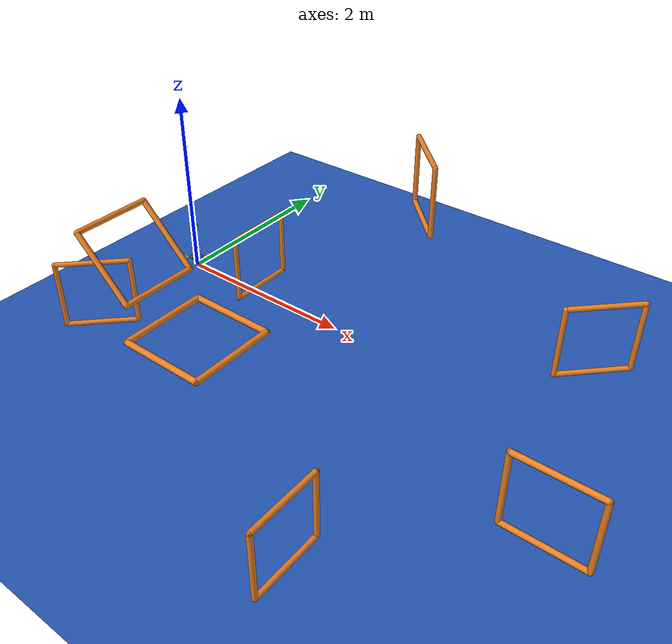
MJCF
<mujoco model="Quadrotor Racing2">
  <include file="../common.xml"/>
  <include file="quadrotor2.xml" />

  <size memory="100K"/>

  <statistic extent="2" center="0.0 0.0 0.0"/>

  <custom>
    <text name="task_transition" data="Loop|Stage1|Stage2|Stage3|Stage4|Stage5|Stage6|Stage7|Stage8|Stage9|Stage10|Stage11|Stage12" />
    <numeric name="agent_planner" data="0" />
    <numeric name="agent_horizon" data="0.5" />
    <numeric name="agent_timestep" data="0.01" />
    <numeric name="sampling_sample_width" data="0.01" />
    <numeric name="sampling_control_width" data="0.015" />
    <numeric name="sampling_spline_points" data="5" />
    <numeric name="sampling_exploration" data="0.3" />
    <numeric name="sampling_processed_noise" data="1" />
    <numeric name="sampling_processed_noise_neighbors" data="3" />
    <numeric name="sampling_processed_noise_passes" data="3" />
    <numeric name="sampling_representation" data="2" />
    <numeric name="sampling_trajectories" data="32" />
    <numeric name="gradient_spline_points" data="5" />
    <numeric name="residual_Lin. Vel. X" data="0 -1.0 1.0" />
    <numeric name="residual_Lin. Vel. Y" data="0 -1.0 1.0" />
    <numeric name="residual_Lin. Vel. Z" data="0 -1.0 1.0" />
    <numeric name="residual_Ang. Vel. X" data="0 -1.0 1.0" />
    <numeric name="residual_Ang. Vel. Y" data="0 -1.0 1.0" />
    <numeric name="residual_Ang. Vel. Z" data="0 -1.0 1.0" />
  </custom>

  <sensor>
    <user name="Position" dim="3" user="0 3.0 0 25.0"/>
    <user name="Orientation" dim="9" user="0 0.5 0 5.0"/>
    <user name="Lin. Vel." dim="3" user="0 0.3 0.0 5.0"/>
    <user name="Ang. Vel." dim="3" user="0 0.3 0.0 5.0"/>
    <user name="Control" dim="4" user="0 1.0e-2 0.0 1.0"/>
    <framepos name="trace0" objtype="body" objname="quadrotor2"/>
    <framepos name="position" objtype="body" objname="quadrotor2"/>
    <framequat name="orientation" objtype="body" objname="quadrotor2"/>
    <framelinvel name="linear_velocity" objtype="body" objname="quadrotor2"/>
    <frameangvel name="angular_velocity" objtype="body" objname="quadrotor2"/>
  </sensor>

  <keyframe>
    <key name="home" mpos="0.0 0.0 0.5" mquat="0.0 0.70710678 0.0 0.70710678" />
    <key mpos="1.2 0.0 0.5" mquat="0.0 0.70710678 0.0 0.70710678" />
    <key mpos="2.3 0.6 1.5" mquat="0.0 0.70710678 0.0 0.70710678" />
    <key mpos="2.7 0.95 1.5" mquat="0.0 0.70710678 0.0 0.70710678" />
    <key mpos="4.6 0.4 0.75" mquat="0.0 0.70710678 0.0 0.70710678" />
    <key mpos="5.0 -1.6 0.75" mquat="0.0 0.70710678 0.0 0.70710678" />
    <key mpos="3.4 -2.5 0.35" mquat="0.0 0.70710678 0.0 0.70710678" />
    <key mpos="2.5 -2.25 1.45" mquat="0.0 0.70710678 0.0 0.70710678" />
    <key mpos="2.5 -2.25 2.25" mquat="0.0 0.70710678 0.0 0.70710678" />
    <key mpos="1.5 -1.75 1.85" mquat="0.0 0.70710678 0.0 0.70710678" />
    <key mpos="1.05 -1.75 1.3" mquat="0.0 0.70710678 0.0 0.70710678" />
    <key mpos="0.1 -1.4 0.5" mquat="0.0 0.70710678 0.0 0.70710678" />
  </keyframe>
</mujoco>

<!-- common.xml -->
<mujoco>

    <visual>
        <headlight ambient=".4 .4 .4" diffuse=".8 .8 .8" specular="0.1 0.1 0.1"/>
        <map znear=".01"/>
        <quality shadowsize="2048"/>
        <global elevation="-15"/>
    </visual>

    <asset>
        <texture name="blue_grid" type="2d" builtin="checker" rgb1=".02 .14 .44" rgb2=".27 .55 1" width="300" height="300" mark="edge" markrgb="1 1 1"/>
        <material name="blue_grid" texture="blue_grid" texrepeat="1 1" texuniform="true" reflectance=".2"/>

        <texture name="grey_grid" type="2d" builtin="checker" rgb1=".26 .26 .26" rgb2=".6 .6 .6" width="300" height="300" mark="edge" markrgb="1 1 1"/>
        <material name="grey_grid" texture="grey_grid" texrepeat="1 1" texuniform="true" reflectance=".2"/>
        <texture name="skybox" type="skybox" builtin="gradient" rgb1=".66 .79 1" rgb2=".9 .91 .93" width="800" height="800"/>

        <material name="self" rgba=".7 .5 .3 1"/>
        <material name="self_default" rgba=".7 .5 .3 1"/>
        <material name="self_highlight" rgba="0 .5 .3 1"/>
        <material name="effector" rgba=".7 .4 .2 1"/>
        <material name="effector_default" rgba=".7 .4 .2 1"/>
        <material name="effector_highlight" rgba="0 .5 .3 1"/>
        <material name="decoration" rgba=".2 .6 .3 1"/>
        <material name="eye" rgba="0 .2 1 1"/>
        <material name="target" rgba=".6 .3 .3 1"/>
        <material name="target_default" rgba=".6 .3 .3 1"/>
        <material name="target_highlight" rgba=".6 .3 .3 .4"/>
        <material name="site" rgba=".5 .5 .5 .3"/>
    </asset>

    <size memory="1M"/>

    <statistic extent="0.4" center="0.3 0.1 0"/>

    <visual>
        <quality shadowsize="8192"/>
        <global azimuth="180" elevation="-30"/>
    </visual>

    <default>
        <geom friction="1.0"/>
    </default>

    <compiler angle="radian" autolimits="true"/>

    <asset>
        <mesh name="apple" file="../../shared_assets/apple/apple.obj" />
        <mesh name="apple_contact0" file="../../shared_assets/apple/contact0.stl"  />
        <mesh name="apple_contact1" file="../../shared_assets/apple/contact1.stl"  />

        <mesh name="doorknob" file="../../shared_assets/doorknob/doorknob.obj" />

        <mesh name="flashlight" file="../../shared_assets/flashlight/flashlight.obj" />
        <mesh name="flashlight_contact0" file="../../shared_assets/flashlight/contact0.stl"  />
        <mesh name="flashlight_contact1" file="../../shared_assets/flashlight/contact1.stl"  />

        <mesh name="hammer" file="../../shared_assets/hammer/hammer.obj" />
        <mesh name="hammer_contact0" file="../../shared_assets/hammer/contact0.stl"  />
        <mesh name="hammer_contact1" file="../../shared_assets/hammer/contact1.stl"  />

        <mesh name="phone" file="../../shared_assets/phone/phone.obj" />
        <mesh name="phone_contact0" file="../../shared_assets/phone/contact0.stl"  />
        <mesh name="phone_contact1" file="../../shared_assets/phone/contact1.stl"  />
        <mesh name="phone_contact2" file="../../shared_assets/phone/contact2.stl"  />

        <mesh name="stapler" file="../../shared_assets/stapler/stapler.obj" />
        <mesh name="stapler_contact0" file="../../shared_assets/stapler/contact0.stl"  />
        <mesh name="stapler_contact1" file="../../shared_assets/stapler/contact1.stl"  />
        <mesh name="stapler_contact2" file="../../shared_assets/stapler/contact2.stl"  />
        <mesh name="stapler_contact3" file="../../shared_assets/stapler/contact3.stl"  />
        <mesh name="stapler_contact4" file="../../shared_assets/stapler/contact4.stl"  />

        <mesh name="waterbottle" file="../../shared_assets/waterbottle/waterbottle.obj" />
        <mesh name="waterbottle_contact0" file="../../shared_assets/waterbottle/contact0.stl"  />
        <mesh name="waterbottle_contact1" file="../../shared_assets/waterbottle/contact1.stl"  />
    </asset>

</mujoco>

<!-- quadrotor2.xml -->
<mujoco model="Quadrotor2">
  <compiler inertiafromgeom="true" coordinate="local"/>
  <option timestep="0.01" gravity="0 0 -9.81" density="1" viscosity="1e-5" />

  <worldbody>
      <geom name="floor" type="plane" conaffinity="1" size="100 100 .2" material="blue_grid"/>
    <body name="goal" mocap="true" pos="0.0 0.0 0.5" quat="0.0 0.70710678 0.0 0.70710678">
      <geom type="sphere" size="0.05" contype="0" conaffinity="0" rgba="0 1 0 .5"/>
    </body>

    <!-- gait 1 -->
    <body name="gait1_left" pos="1.0 0.35 0.5" quat="1 0 0 0">
      <geom type="capsule" size="0.025 0.1 0.05" rgba="0.902 0.494 0.133 1" fromto="0.0 0 -0.35 0.0 0 0.35"/>
    </body>
    <body name="gait1_right" pos="1.0 -0.35 0.5" quat="1 0 0 0">
      <geom type="capsule" size="0.025 0.1 0.05" rgba="0.902 0.494 0.133 1" fromto="0.0 0 -0.35 0.0 0 0.35"/>
    </body>
    <body name="gait1_top" pos="1.0 0.0 0.85" quat="1 0 0 0">
      <geom type="capsule" size="0.025 0.1 0.05" rgba="0.902 0.494 0.133 1" fromto="0.0 -0.35 0.0 0.0 0.35 0.0"/>
    </body>
    <body name="gait1_bottom" pos="1.0 0.0 0.15" quat="1 0 0 0">
      <geom type="capsule" size="0.025 0.1 0.05" rgba="0.902 0.494 0.133 1" fromto="0.0 -0.35 0.0 0.0 0.35 0.0"/>
    </body>

    <!-- gait 2 -->
    <body name="gait2_left" pos="2.25 1.0 1.5" quat="0.92388 0.0 0.0 0.382683">
      <geom type="capsule" size="0.025 0.1 0.05" rgba="0.902 0.494 0.133 1" fromto="0.0 0 -0.35 0.0 0 0.35"/>
    </body>
    <body name="gait2_right" pos="2.75 0.5 1.5" quat="0.92388 0.0 0.0 0.382683">
      <geom type="capsule" size="0.025 0.1 0.05" rgba="0.902 0.494 0.133 1" fromto="0.0 0 -0.35 0.0 0 0.35"/>
    </body>
    <body name="gait2_top" pos="2.5 0.75 1.85" quat="0.92388 0.0 0.0 0.382683">
      <geom type="capsule" size="0.025 0.1 0.05" rgba="0.902 0.494 0.133 1" fromto="0.0 -0.35 0.0 0.0 0.35 0.0"/>
    </body>
    <body name="gait2_bottom" pos="2.5 0.75 1.15" quat="0.92388 0.0 0.0 0.382683">
      <geom type="capsule" size="0.025 0.1 0.05" rgba="0.902 0.494 0.133 1" fromto="0.0 -0.35 0.0 0.0 0.35 0.0"/>
    </body>

    <!-- gait 3 -->
    <body name="gait3_left" pos="4.75 0.75 0.75" quat="0.92388 0.0 0.0 -0.382683">
      <geom type="capsule" size="0.025 0.1 0.05" rgba="0.902 0.494 0.133 1" fromto="0.0 0 -0.35 0.0 0 0.35"/>
    </body>
    <body name="gait3_right" pos="4.25 0.25 0.75" quat="0.92388 0.0 0.0 -0.382683">
      <geom type="capsule" size="0.025 0.1 0.05" rgba="0.902 0.494 0.133 1" fromto="0.0 0 -0.35 0.0 0 0.35"/>
    </body>
    <body name="gait3_top" pos="4.5 0.5 1.1" quat="0.92388 0.0 0.0 -0.382683">
      <geom type="capsule" size="0.025 0.1 0.05" rgba="0.902 0.494 0.133 1" fromto="0.0 -0.35 0.0 0.0 0.35 0.0"/>
    </body>
    <body name="gait3_bottom" pos="4.5 0.5 0.4" quat="0.92388 0.0 0.0 -0.382683">
      <geom type="capsule" size="0.025 0.1 0.05" rgba="0.902 0.494 0.133 1" fromto="0.0 -0.35 0.0 0.0 0.35 0.0"/>
    </body>

    <!-- gait 4 -->
    <body name="gait4_left" pos="5.35 -1.5 0.75" quat="0.7071 0 0 0.7071">
      <geom type="capsule" size="0.025 0.1 0.05" rgba="0.902 0.494 0.133 1" fromto="0.0 0 -0.35 0.0 0 0.35"/>
    </body>
    <body name="gait4_right" pos="4.65 -1.5 0.75" quat="0.7071 0 0 0.7071">
      <geom type="capsule" size="0.025 0.1 0.05" rgba="0.902 0.494 0.133 1" fromto="0.0 0 -0.35 0.0 0 0.35"/>
    </body>
    <body name="gait4_top" pos="5.0 -1.5 1.1" quat="0.7071 0 0 0.7071">
      <geom type="capsule" size="0.025 0.1 0.05" rgba="0.902 0.494 0.133 1" fromto="0.0 -0.35 0.0 0.0 0.35 0.0"/>
    </body>
    <body name="gait4_bottom" pos="5.0 -1.5 0.4" quat="0.7071 0 0 0.7071">
      <geom type="capsule" size="0.025 0.1 0.05" rgba="0.902 0.494 0.133 1" fromto="0.0 -0.35 0.0 0.0 0.35 0.0"/>
    </body>

    <!-- gait 5 -->
    <body name="gait5_left" pos="3.5 -2.85 0.35" quat="1 0 0 0">
      <geom type="capsule" size="0.025 0.1 0.05" rgba="0.902 0.494 0.133 1" fromto="0.0 0 -0.35 0.0 0 0.35"/>
    </body>
    <body name="gait5_right" pos="3.5 -2.15 0.35" quat="1 0 0 0">
      <geom type="capsule" size="0.025 0.1 0.05" rgba="0.902 0.494 0.133 1" fromto="0.0 0 -0.35 0.0 0 0.35"/>
    </body>
    <body name="gait5_top" pos="3.5 -2.5 0.7" quat="1 0 0 0">
      <geom type="capsule" size="0.025 0.1 0.05" rgba="0.902 0.494 0.133 1" fromto="0.0 -0.35 0.0 0.0 0.35 0.0"/>
    </body>
    <body name="gait5_bottom" pos="3.5 -2.5 0.0" quat="1 0 0 0">
      <geom type="capsule" size="0.025 0.1 0.05" rgba="0.902 0.494 0.133 1" fromto="0.0 -0.35 0.0 0.0 0.35 0.0"/>
    </body>

    <!-- gait 6 -->
    <body name="gait6_left" pos="2.5 -1.9 1.5" quat="1 0 0 0">
      <geom type="capsule" size="0.025 0.1 0.05" rgba="0.902 0.494 0.133 1" fromto="-0.35 0.0 0.0 0.35 0.0 0.0"/>
    </body>
    <body name="gait6_right" pos="2.5 -2.6 1.5" quat="1 0 0 0">
      <geom type="capsule" size="0.025 0.1 0.05" rgba="0.902 0.494 0.133 1" fromto="-0.35 0.0 0.0 0.35 0.0 0.0"/>
    </body>
    <body name="gait6_top" pos="2.85 -2.25 1.5" quat="1 0 0 0">
      <geom type="capsule" size="0.025 0.1 0.05" rgba="0.902 0.494 0.133 1" fromto="0.0 -0.35 0.0 0.0 0.35 0.0"/>
    </body>
    <body name="gait6_bottom" pos="2.15 -2.25 1.5" quat="1 0 0 0">
      <geom type="capsule" size="0.025 0.1 0.05" rgba="0.902 0.494 0.133 1" fromto="0.0 -0.35 0.0 0.0 0.35 0.0"/>
    </body>

    <!-- gait 7 -->
    <body name="gait7_left" pos="1.25 -2.1 1.5" quat="0.9238 0.0 -0.382683 0.0">
      <geom type="capsule" size="0.025 0.1 0.05" rgba="0.902 0.494 0.133 1" fromto="0.0 0 -0.35 0.0 0 0.35"/>
    </body>
    <body name="gait7_right" pos="1.25 -1.4 1.5" quat="0.9238 0.0 -0.382683 0.0">
      <geom type="capsule" size="0.025 0.1 0.05" rgba="0.902 0.494 0.133 1" fromto="0.0 0 -0.35 0.0 0 0.35"/>
    </body>
    <body name="gait7_top" pos="1.0 -1.75 1.75" quat="0.9238 0.0 -0.382683 0.0">
      <geom type="capsule" size="0.025 0.1 0.05" rgba="0.902 0.494 0.133 1" fromto="0.0 -0.35 0.0 0.0 0.35 0.0"/>
    </body>
    <body name="gait7_bottom" pos="1.5 -1.75 1.25" quat="0.9238 0.0 -0.382683 0.0">
      <geom type="capsule" size="0.025 0.1 0.05" rgba="0.902 0.494 0.133 1" fromto="0.0 -0.35 0.0 0.0 0.35 0.0"/>
    </body>

    <!-- gait 8 -->
    <body name="gait8_left" pos="0.45 -1.25 0.5" quat="0.92388 0.0 0.0 -0.382683">
      <geom type="capsule" size="0.025 0.1 0.05" rgba="0.902 0.494 0.133 1" fromto="0.0 0 -0.35 0.0 0 0.35"/>
    </body>
    <body name="gait8_right" pos="-0.05 -1.75 0.5" quat="0.92388 0.0 0.0 -0.382683">
      <geom type="capsule" size="0.025 0.1 0.05" rgba="0.902 0.494 0.133 1" fromto="0.0 0 -0.35 0.0 0 0.35"/>
    </body>
    <body name="gait8_top" pos="0.2 -1.5 0.85" quat="0.92388 0.0 0.0 -0.382683">
      <geom type="capsule" size="0.025 0.1 0.05" rgba="0.902 0.494 0.133 1" fromto="0.0 -0.35 0.0 0.0 0.35 0.0"/>
    </body>
    <body name="gait8_bottom" pos="0.2 -1.5 0.15" quat="0.92388 0.0 0.0 -0.382683">
      <geom type="capsule" size="0.025 0.1 0.05" rgba="0.902 0.494 0.133 1" fromto="0.0 -0.35 0.0 0.0 0.35 0.0"/>
    </body>

    <body name="quadrotor2" pos="0 0 0.1">
      <geom name="core" type="box" pos="0 0 0" quat = "1. 0. 0. 0" size="0.06 0.035 0.025"  rgba="0.3 0.3 0.8 1" mass = ".2"/>

      <geom name="a00" type="box" pos=".071 0.071 0.0" size="0.05 0.01 0.0025"  quat = ".924 0.0 0.0 0.383" rgba="0.5 0.5 0.5 1" mass = ".025"/>
      <geom name="a10" type="box" pos=".071 -0.071 0.0" size="0.05 0.01 0.0025"  quat = ".383 0.0 0.0 0.924" rgba="0.5 0.5 0.5 1" mass = ".025"/>
      <geom name="a20" type="box" pos="-0.071 -0.071 0.0" size="0.05 0.01 0.0025"  quat = "-.383 0.0 0.0 0.924" rgba="0.5 0.5 0.5 1" mass = ".025"/>
      <geom name="a30" type="box" pos="-.071 0.071 0.0" size="0.05 0.01 0.0025"  quat = ".924 0.0 0.0 -0.383" rgba="0.5 0.5 0.5 1" mass = ".025"/>

      <joint name="root"   type="free" damping="0" armature="0" pos="0 0 0" />

      <!-- Actuator sites to attach actuators  -->
            <site name="thrust" type="box" pos="0 0 0"  size="0.06 0.035 0.025"  quat = "1.0 0.0 0.0 0." rgba="0.5 0.5 0.5 1"/>
      <site name="rateX" type="box" pos="0 0 0" quat = "1. 0. 0. 0."  size="0.06 0.035 0.025" rgba="0.5 0.5 0.5 1" />
      <site name="rateY" type="box" pos="0 0 0" quat = "1. 0. 0. 0."  size="0.06 0.035 0.025" rgba="0.5 0.5 0.5 1" />
      <site name="rateZ" type="box" pos="0 0 0" quat = "1. 0. 0. 0."  size="0.06 0.035 0.025" rgba="0.5 0.5 0.5 1" />

      <!-- Thruster geometries for collisions since site's are excluded from collision checking -->
            <geom name="thruster0" type="cylinder" pos=" 0.1  0.1  0.01" size="0.05 0.0025"  quat = "1.0 0.0 0.0 0." rgba="0.5 0.5 0.5 1" mass = ".025"/>
            <geom name="thruster1" type="cylinder" pos=" 0.1 -0.1  0.01" size="0.05 0.0025"  quat = "1.0 0.0 0.0 0." rgba="0.5 0.5 0.5 1" mass = ".025"/>
            <geom name="thruster2" type="cylinder" pos="-0.1 -0.1  0.01" size="0.05 0.0025"  quat = "1.0 0.0 0.0 0." rgba="0.5 0.5 0.5 1" mass = ".025"/>
            <geom name="thruster3" type="cylinder" pos="-0.1  0.1  0.01" size="0.05 0.0025"  quat = "1.0 0.0 0.0 0." rgba="0.5 0.5 0.5 1" mass = ".025"/>

            <!-- Visualization of the coordinate frame -->
    </body>
  </worldbody>
    <actuator>
    <motor ctrllimited="true" ctrlrange="0.0 1.0" gear="0  0. 5. 0. 0. 0." site="thrust"/>
    <velocity ctrllimited="true" ctrlrange="-1 1" gear="0. 0. 0. 1. 0. 0." kv="0.1" site="rateX"/>
    <velocity ctrllimited="true" ctrlrange="-1 1" gear="0. 0. 0. 0. 1. 0." kv="0.1" site="rateY"/>
    <velocity ctrllimited="true" ctrlrange="-1 1" gear="0. 0. 0. 0. 0. 1." kv="0.1" site="rateZ"/>
  </actuator>
</mujoco>
